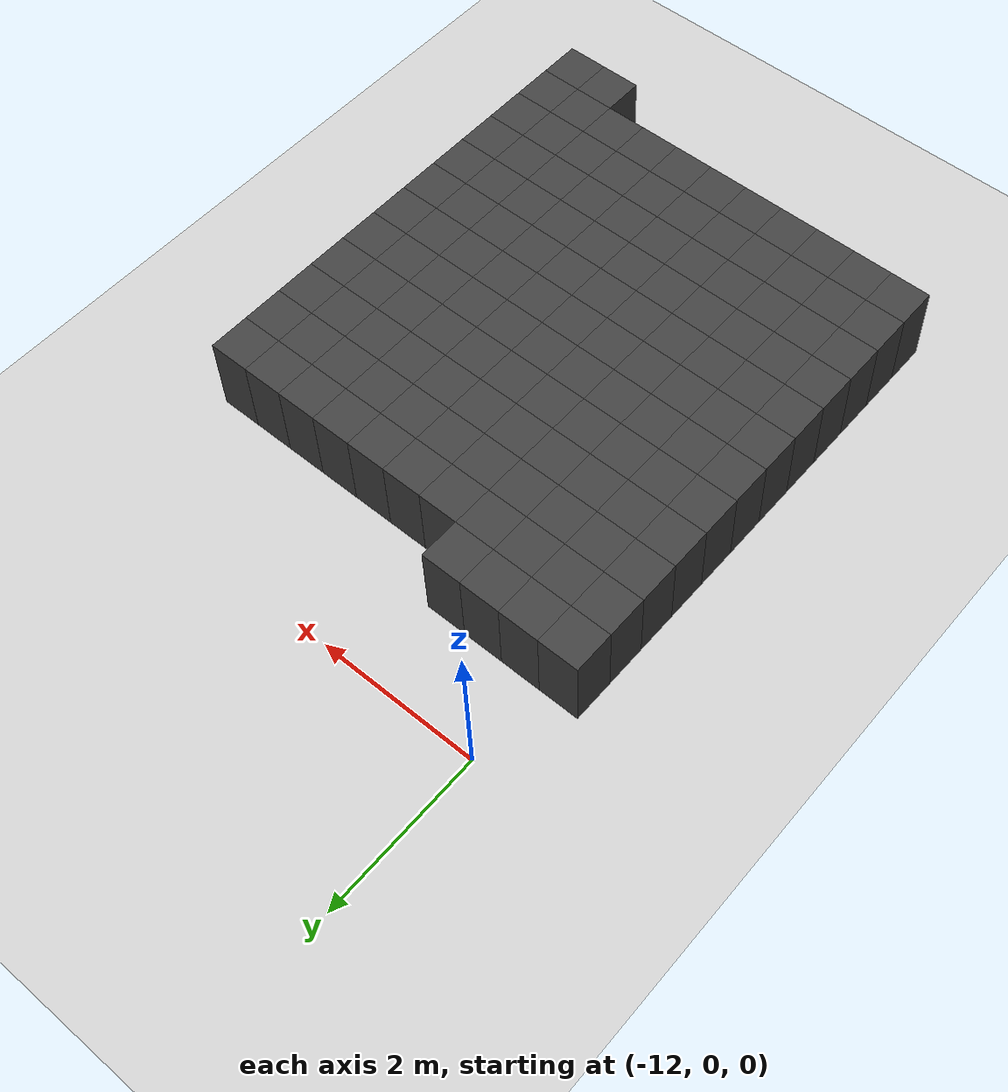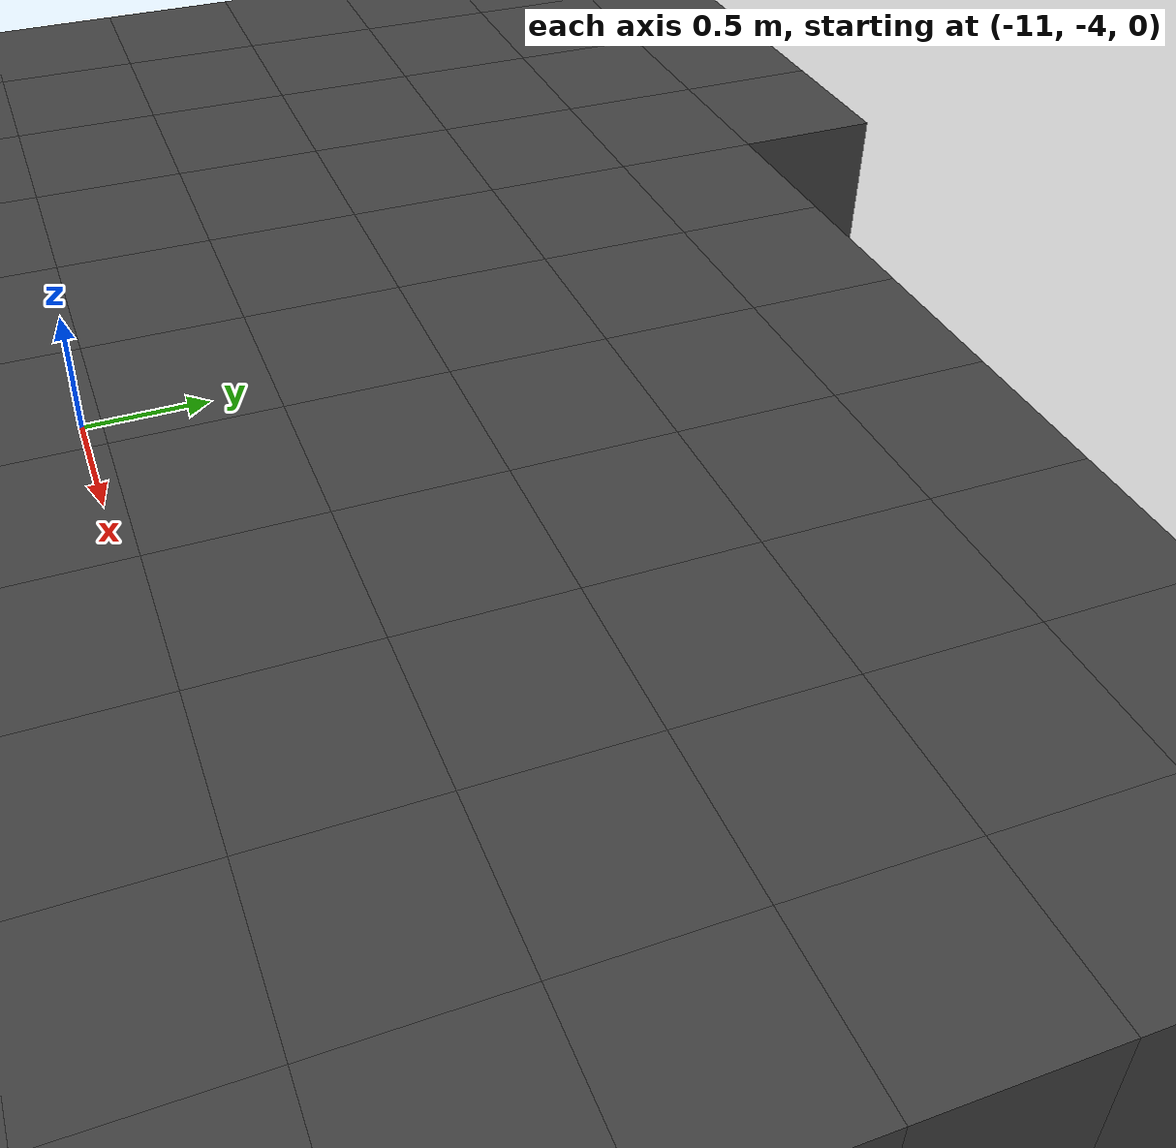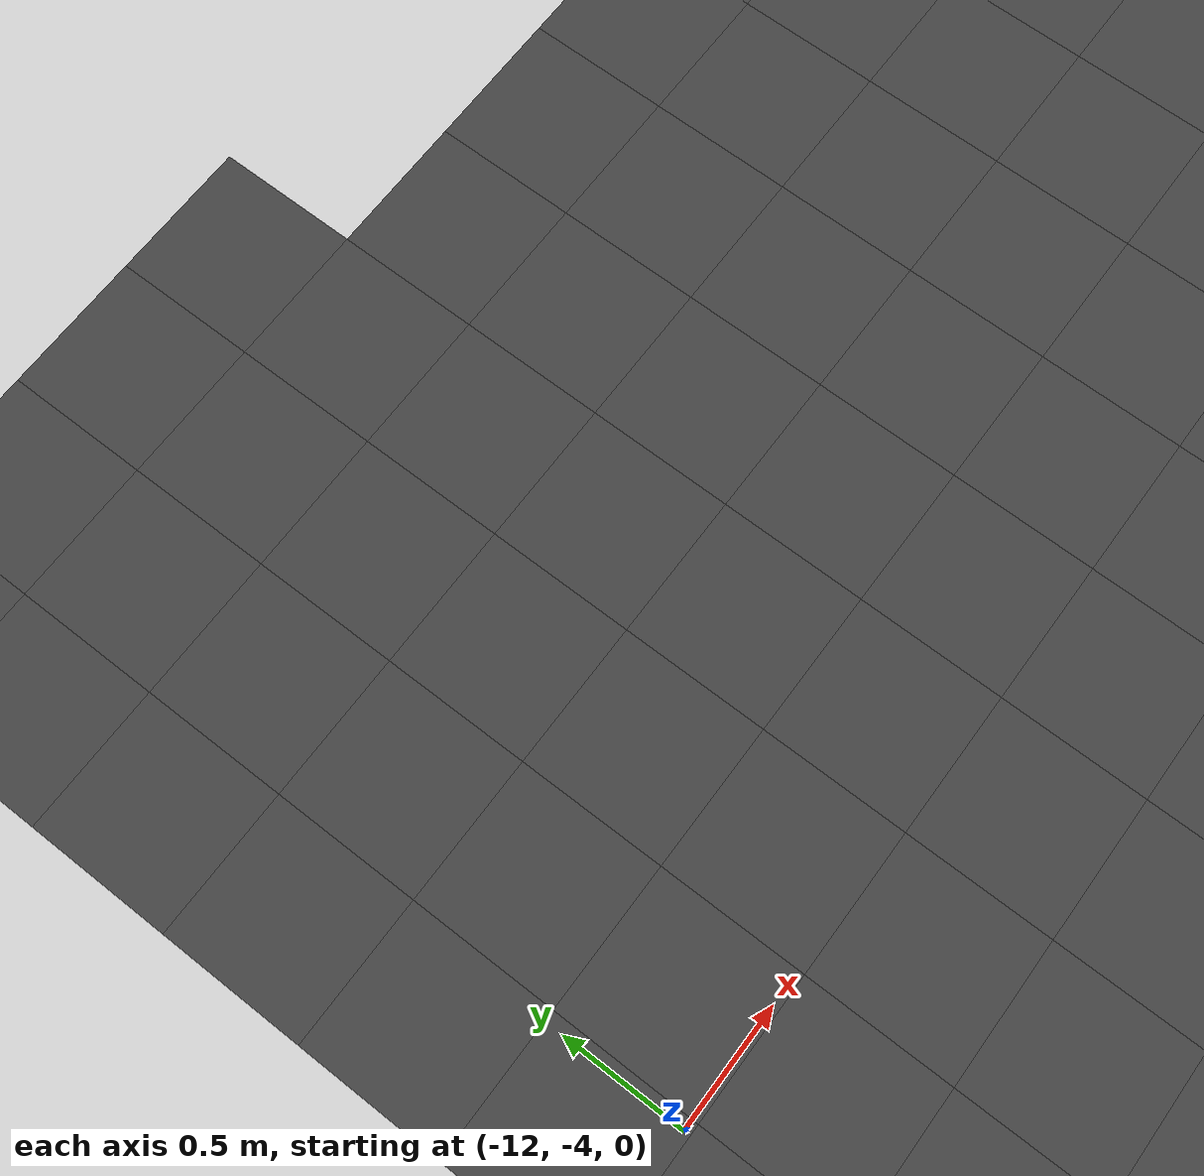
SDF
<sdf version="1.7">
 <world name="map_11672">
  <model name="ground_plane">
   <static>true</static>
   <link name="link">
    <collision name="collision">
     <geometry><plane><normal>0 0 1</normal><size>200 200</size></plane></geometry>
    </collision>
    <visual name="visual">
     <geometry><plane><normal>0 0 1</normal><size>200 200</size></plane></geometry>
     <material><ambient>0.8 0.8 0.8 1</ambient><diffuse>0.8 0.8 0.8 1</diffuse></material>
    </visual>
   </link>
  </model>
  <model name="maze_environment">
   <static>true</static>
   <link name="wall_1099">
    <pose>-12.250 -1.250 0.500 0 0 0</pose>
    <collision name="col"><geometry><box><size>0.5 0.5 1.0</size></box></geometry></collision>
    <visual name="vis">
     <geometry><box><size>0.5 0.5 1.0</size></box></geometry>
     <material><ambient>0.15 0.15 0.15 1</ambient><diffuse>0.25 0.25 0.25 1</diffuse></material>
    </visual>
   </link>
   <link name="wall_1100">
    <pose>-11.750 -1.250 0.500 0 0 0</pose>
    <collision name="col"><geometry><box><size>0.5 0.5 1.0</size></box></geometry></collision>
    <visual name="vis">
     <geometry><box><size>0.5 0.5 1.0</size></box></geometry>
     <material><ambient>0.15 0.15 0.15 1</ambient><diffuse>0.25 0.25 0.25 1</diffuse></material>
    </visual>
   </link>
   <link name="wall_1101">
    <pose>-11.250 -1.250 0.500 0 0 0</pose>
    <collision name="col"><geometry><box><size>0.5 0.5 1.0</size></box></geometry></collision>
    <visual name="vis">
     <geometry><box><size>0.5 0.5 1.0</size></box></geometry>
     <material><ambient>0.15 0.15 0.15 1</ambient><diffuse>0.25 0.25 0.25 1</diffuse></material>
    </visual>
   </link>
   <link name="wall_1102">
    <pose>-10.750 -1.250 0.500 0 0 0</pose>
    <collision name="col"><geometry><box><size>0.5 0.5 1.0</size></box></geometry></collision>
    <visual name="vis">
     <geometry><box><size>0.5 0.5 1.0</size></box></geometry>
     <material><ambient>0.15 0.15 0.15 1</ambient><diffuse>0.25 0.25 0.25 1</diffuse></material>
    </visual>
   </link>
   <link name="wall_1147">
    <pose>-12.250 -1.750 0.500 0 0 0</pose>
    <collision name="col"><geometry><box><size>0.5 0.5 1.0</size></box></geometry></collision>
    <visual name="vis">
     <geometry><box><size>0.5 0.5 1.0</size></box></geometry>
     <material><ambient>0.15 0.15 0.15 1</ambient><diffuse>0.25 0.25 0.25 1</diffuse></material>
    </visual>
   </link>
   <link name="wall_1148">
    <pose>-11.750 -1.750 0.500 0 0 0</pose>
    <collision name="col"><geometry><box><size>0.5 0.5 1.0</size></box></geometry></collision>
    <visual name="vis">
     <geometry><box><size>0.5 0.5 1.0</size></box></geometry>
     <material><ambient>0.15 0.15 0.15 1</ambient><diffuse>0.25 0.25 0.25 1</diffuse></material>
    </visual>
   </link>
   <link name="wall_1149">
    <pose>-11.250 -1.750 0.500 0 0 0</pose>
    <collision name="col"><geometry><box><size>0.5 0.5 1.0</size></box></geometry></collision>
    <visual name="vis">
     <geometry><box><size>0.5 0.5 1.0</size></box></geometry>
     <material><ambient>0.15 0.15 0.15 1</ambient><diffuse>0.25 0.25 0.25 1</diffuse></material>
    </visual>
   </link>
   <link name="wall_1150">
    <pose>-10.750 -1.750 0.500 0 0 0</pose>
    <collision name="col"><geometry><box><size>0.5 0.5 1.0</size></box></geometry></collision>
    <visual name="vis">
     <geometry><box><size>0.5 0.5 1.0</size></box></geometry>
     <material><ambient>0.15 0.15 0.15 1</ambient><diffuse>0.25 0.25 0.25 1</diffuse></material>
    </visual>
   </link>
   <link name="wall_1151">
    <pose>-10.250 -1.750 0.500 0 0 0</pose>
    <collision name="col"><geometry><box><size>0.5 0.5 1.0</size></box></geometry></collision>
    <visual name="vis">
     <geometry><box><size>0.5 0.5 1.0</size></box></geometry>
     <material><ambient>0.15 0.15 0.15 1</ambient><diffuse>0.25 0.25 0.25 1</diffuse></material>
    </visual>
   </link>
   <link name="wall_1152">
    <pose>-9.750 -1.750 0.500 0 0 0</pose>
    <collision name="col"><geometry><box><size>0.5 0.5 1.0</size></box></geometry></collision>
    <visual name="vis">
     <geometry><box><size>0.5 0.5 1.0</size></box></geometry>
     <material><ambient>0.15 0.15 0.15 1</ambient><diffuse>0.25 0.25 0.25 1</diffuse></material>
    </visual>
   </link>
   <link name="wall_1153">
    <pose>-9.250 -1.750 0.500 0 0 0</pose>
    <collision name="col"><geometry><box><size>0.5 0.5 1.0</size></box></geometry></collision>
    <visual name="vis">
     <geometry><box><size>0.5 0.5 1.0</size></box></geometry>
     <material><ambient>0.15 0.15 0.15 1</ambient><diffuse>0.25 0.25 0.25 1</diffuse></material>
    </visual>
   </link>
   <link name="wall_1154">
    <pose>-8.750 -1.750 0.500 0 0 0</pose>
    <collision name="col"><geometry><box><size>0.5 0.5 1.0</size></box></geometry></collision>
    <visual name="vis">
     <geometry><box><size>0.5 0.5 1.0</size></box></geometry>
     <material><ambient>0.15 0.15 0.15 1</ambient><diffuse>0.25 0.25 0.25 1</diffuse></material>
    </visual>
   </link>
   <link name="wall_1155">
    <pose>-8.250 -1.750 0.500 0 0 0</pose>
    <collision name="col"><geometry><box><size>0.5 0.5 1.0</size></box></geometry></collision>
    <visual name="vis">
     <geometry><box><size>0.5 0.5 1.0</size></box></geometry>
     <material><ambient>0.15 0.15 0.15 1</ambient><diffuse>0.25 0.25 0.25 1</diffuse></material>
    </visual>
   </link>
   <link name="wall_1156">
    <pose>-7.750 -1.750 0.500 0 0 0</pose>
    <collision name="col"><geometry><box><size>0.5 0.5 1.0</size></box></geometry></collision>
    <visual name="vis">
     <geometry><box><size>0.5 0.5 1.0</size></box></geometry>
     <material><ambient>0.15 0.15 0.15 1</ambient><diffuse>0.25 0.25 0.25 1</diffuse></material>
    </visual>
   </link>
   <link name="wall_1157">
    <pose>-7.250 -1.750 0.500 0 0 0</pose>
    <collision name="col"><geometry><box><size>0.5 0.5 1.0</size></box></geometry></collision>
    <visual name="vis">
     <geometry><box><size>0.5 0.5 1.0</size></box></geometry>
     <material><ambient>0.15 0.15 0.15 1</ambient><diffuse>0.25 0.25 0.25 1</diffuse></material>
    </visual>
   </link>
   <link name="wall_1195">
    <pose>-12.250 -2.250 0.500 0 0 0</pose>
    <collision name="col"><geometry><box><size>0.5 0.5 1.0</size></box></geometry></collision>
    <visual name="vis">
     <geometry><box><size>0.5 0.5 1.0</size></box></geometry>
     <material><ambient>0.15 0.15 0.15 1</ambient><diffuse>0.25 0.25 0.25 1</diffuse></material>
    </visual>
   </link>
   <link name="wall_1196">
    <pose>-11.750 -2.250 0.500 0 0 0</pose>
    <collision name="col"><geometry><box><size>0.5 0.5 1.0</size></box></geometry></collision>
    <visual name="vis">
     <geometry><box><size>0.5 0.5 1.0</size></box></geometry>
     <material><ambient>0.15 0.15 0.15 1</ambient><diffuse>0.25 0.25 0.25 1</diffuse></material>
    </visual>
   </link>
   <link name="wall_1197">
    <pose>-11.250 -2.250 0.500 0 0 0</pose>
    <collision name="col"><geometry><box><size>0.5 0.5 1.0</size></box></geometry></collision>
    <visual name="vis">
     <geometry><box><size>0.5 0.5 1.0</size></box></geometry>
     <material><ambient>0.15 0.15 0.15 1</ambient><diffuse>0.25 0.25 0.25 1</diffuse></material>
    </visual>
   </link>
   <link name="wall_1198">
    <pose>-10.750 -2.250 0.500 0 0 0</pose>
    <collision name="col"><geometry><box><size>0.5 0.5 1.0</size></box></geometry></collision>
    <visual name="vis">
     <geometry><box><size>0.5 0.5 1.0</size></box></geometry>
     <material><ambient>0.15 0.15 0.15 1</ambient><diffuse>0.25 0.25 0.25 1</diffuse></material>
    </visual>
   </link>
   <link name="wall_1199">
    <pose>-10.250 -2.250 0.500 0 0 0</pose>
    <collision name="col"><geometry><box><size>0.5 0.5 1.0</size></box></geometry></collision>
    <visual name="vis">
     <geometry><box><size>0.5 0.5 1.0</size></box></geometry>
     <material><ambient>0.15 0.15 0.15 1</ambient><diffuse>0.25 0.25 0.25 1</diffuse></material>
    </visual>
   </link>
   <link name="wall_1200">
    <pose>-9.750 -2.250 0.500 0 0 0</pose>
    <collision name="col"><geometry><box><size>0.5 0.5 1.0</size></box></geometry></collision>
    <visual name="vis">
     <geometry><box><size>0.5 0.5 1.0</size></box></geometry>
     <material><ambient>0.15 0.15 0.15 1</ambient><diffuse>0.25 0.25 0.25 1</diffuse></material>
    </visual>
   </link>
   <link name="wall_1201">
    <pose>-9.250 -2.250 0.500 0 0 0</pose>
    <collision name="col"><geometry><box><size>0.5 0.5 1.0</size></box></geometry></collision>
    <visual name="vis">
     <geometry><box><size>0.5 0.5 1.0</size></box></geometry>
     <material><ambient>0.15 0.15 0.15 1</ambient><diffuse>0.25 0.25 0.25 1</diffuse></material>
    </visual>
   </link>
   <link name="wall_1202">
    <pose>-8.750 -2.250 0.500 0 0 0</pose>
    <collision name="col"><geometry><box><size>0.5 0.5 1.0</size></box></geometry></collision>
    <visual name="vis">
     <geometry><box><size>0.5 0.5 1.0</size></box></geometry>
     <material><ambient>0.15 0.15 0.15 1</ambient><diffuse>0.25 0.25 0.25 1</diffuse></material>
    </visual>
   </link>
   <link name="wall_1203">
    <pose>-8.250 -2.250 0.500 0 0 0</pose>
    <collision name="col"><geometry><box><size>0.5 0.5 1.0</size></box></geometry></collision>
    <visual name="vis">
     <geometry><box><size>0.5 0.5 1.0</size></box></geometry>
     <material><ambient>0.15 0.15 0.15 1</ambient><diffuse>0.25 0.25 0.25 1</diffuse></material>
    </visual>
   </link>
   <link name="wall_1204">
    <pose>-7.750 -2.250 0.500 0 0 0</pose>
    <collision name="col"><geometry><box><size>0.5 0.5 1.0</size></box></geometry></collision>
    <visual name="vis">
     <geometry><box><size>0.5 0.5 1.0</size></box></geometry>
     <material><ambient>0.15 0.15 0.15 1</ambient><diffuse>0.25 0.25 0.25 1</diffuse></material>
    </visual>
   </link>
   <link name="wall_1205">
    <pose>-7.250 -2.250 0.500 0 0 0</pose>
    <collision name="col"><geometry><box><size>0.5 0.5 1.0</size></box></geometry></collision>
    <visual name="vis">
     <geometry><box><size>0.5 0.5 1.0</size></box></geometry>
     <material><ambient>0.15 0.15 0.15 1</ambient><diffuse>0.25 0.25 0.25 1</diffuse></material>
    </visual>
   </link>
   <link name="wall_1240">
    <pose>-12.250 -2.750 0.500 0 0 0</pose>
    <collision name="col"><geometry><box><size>0.5 0.5 1.0</size></box></geometry></collision>
    <visual name="vis">
     <geometry><box><size>0.5 0.5 1.0</size></box></geometry>
     <material><ambient>0.15 0.15 0.15 1</ambient><diffuse>0.25 0.25 0.25 1</diffuse></material>
    </visual>
   </link>
   <link name="wall_1241">
    <pose>-11.750 -2.750 0.500 0 0 0</pose>
    <collision name="col"><geometry><box><size>0.5 0.5 1.0</size></box></geometry></collision>
    <visual name="vis">
     <geometry><box><size>0.5 0.5 1.0</size></box></geometry>
     <material><ambient>0.15 0.15 0.15 1</ambient><diffuse>0.25 0.25 0.25 1</diffuse></material>
    </visual>
   </link>
   <link name="wall_1242">
    <pose>-11.250 -2.750 0.500 0 0 0</pose>
    <collision name="col"><geometry><box><size>0.5 0.5 1.0</size></box></geometry></collision>
    <visual name="vis">
     <geometry><box><size>0.5 0.5 1.0</size></box></geometry>
     <material><ambient>0.15 0.15 0.15 1</ambient><diffuse>0.25 0.25 0.25 1</diffuse></material>
    </visual>
   </link>
   <link name="wall_1243">
    <pose>-10.750 -2.750 0.500 0 0 0</pose>
    <collision name="col"><geometry><box><size>0.5 0.5 1.0</size></box></geometry></collision>
    <visual name="vis">
     <geometry><box><size>0.5 0.5 1.0</size></box></geometry>
     <material><ambient>0.15 0.15 0.15 1</ambient><diffuse>0.25 0.25 0.25 1</diffuse></material>
    </visual>
   </link>
   <link name="wall_1244">
    <pose>-10.250 -2.750 0.500 0 0 0</pose>
    <collision name="col"><geometry><box><size>0.5 0.5 1.0</size></box></geometry></collision>
    <visual name="vis">
     <geometry><box><size>0.5 0.5 1.0</size></box></geometry>
     <material><ambient>0.15 0.15 0.15 1</ambient><diffuse>0.25 0.25 0.25 1</diffuse></material>
    </visual>
   </link>
   <link name="wall_1245">
    <pose>-9.750 -2.750 0.500 0 0 0</pose>
    <collision name="col"><geometry><box><size>0.5 0.5 1.0</size></box></geometry></collision>
    <visual name="vis">
     <geometry><box><size>0.5 0.5 1.0</size></box></geometry>
     <material><ambient>0.15 0.15 0.15 1</ambient><diffuse>0.25 0.25 0.25 1</diffuse></material>
    </visual>
   </link>
   <link name="wall_1246">
    <pose>-9.250 -2.750 0.500 0 0 0</pose>
    <collision name="col"><geometry><box><size>0.5 0.5 1.0</size></box></geometry></collision>
    <visual name="vis">
     <geometry><box><size>0.5 0.5 1.0</size></box></geometry>
     <material><ambient>0.15 0.15 0.15 1</ambient><diffuse>0.25 0.25 0.25 1</diffuse></material>
    </visual>
   </link>
   <link name="wall_1247">
    <pose>-8.750 -2.750 0.500 0 0 0</pose>
    <collision name="col"><geometry><box><size>0.5 0.5 1.0</size></box></geometry></collision>
    <visual name="vis">
     <geometry><box><size>0.5 0.5 1.0</size></box></geometry>
     <material><ambient>0.15 0.15 0.15 1</ambient><diffuse>0.25 0.25 0.25 1</diffuse></material>
    </visual>
   </link>
   <link name="wall_1248">
    <pose>-8.250 -2.750 0.500 0 0 0</pose>
    <collision name="col"><geometry><box><size>0.5 0.5 1.0</size></box></geometry></collision>
    <visual name="vis">
     <geometry><box><size>0.5 0.5 1.0</size></box></geometry>
     <material><ambient>0.15 0.15 0.15 1</ambient><diffuse>0.25 0.25 0.25 1</diffuse></material>
    </visual>
   </link>
   <link name="wall_1249">
    <pose>-7.750 -2.750 0.500 0 0 0</pose>
    <collision name="col"><geometry><box><size>0.5 0.5 1.0</size></box></geometry></collision>
    <visual name="vis">
     <geometry><box><size>0.5 0.5 1.0</size></box></geometry>
     <material><ambient>0.15 0.15 0.15 1</ambient><diffuse>0.25 0.25 0.25 1</diffuse></material>
    </visual>
   </link>
   <link name="wall_1250">
    <pose>-7.250 -2.750 0.500 0 0 0</pose>
    <collision name="col"><geometry><box><size>0.5 0.5 1.0</size></box></geometry></collision>
    <visual name="vis">
     <geometry><box><size>0.5 0.5 1.0</size></box></geometry>
     <material><ambient>0.15 0.15 0.15 1</ambient><diffuse>0.25 0.25 0.25 1</diffuse></material>
    </visual>
   </link>
   <link name="wall_1279">
    <pose>-12.250 -3.250 0.500 0 0 0</pose>
    <collision name="col"><geometry><box><size>0.5 0.5 1.0</size></box></geometry></collision>
    <visual name="vis">
     <geometry><box><size>0.5 0.5 1.0</size></box></geometry>
     <material><ambient>0.15 0.15 0.15 1</ambient><diffuse>0.25 0.25 0.25 1</diffuse></material>
    </visual>
   </link>
   <link name="wall_1280">
    <pose>-11.750 -3.250 0.500 0 0 0</pose>
    <collision name="col"><geometry><box><size>0.5 0.5 1.0</size></box></geometry></collision>
    <visual name="vis">
     <geometry><box><size>0.5 0.5 1.0</size></box></geometry>
     <material><ambient>0.15 0.15 0.15 1</ambient><diffuse>0.25 0.25 0.25 1</diffuse></material>
    </visual>
   </link>
   <link name="wall_1281">
    <pose>-11.250 -3.250 0.500 0 0 0</pose>
    <collision name="col"><geometry><box><size>0.5 0.5 1.0</size></box></geometry></collision>
    <visual name="vis">
     <geometry><box><size>0.5 0.5 1.0</size></box></geometry>
     <material><ambient>0.15 0.15 0.15 1</ambient><diffuse>0.25 0.25 0.25 1</diffuse></material>
    </visual>
   </link>
   <link name="wall_1282">
    <pose>-10.750 -3.250 0.500 0 0 0</pose>
    <collision name="col"><geometry><box><size>0.5 0.5 1.0</size></box></geometry></collision>
    <visual name="vis">
     <geometry><box><size>0.5 0.5 1.0</size></box></geometry>
     <material><ambient>0.15 0.15 0.15 1</ambient><diffuse>0.25 0.25 0.25 1</diffuse></material>
    </visual>
   </link>
   <link name="wall_1283">
    <pose>-10.250 -3.250 0.500 0 0 0</pose>
    <collision name="col"><geometry><box><size>0.5 0.5 1.0</size></box></geometry></collision>
    <visual name="vis">
     <geometry><box><size>0.5 0.5 1.0</size></box></geometry>
     <material><ambient>0.15 0.15 0.15 1</ambient><diffuse>0.25 0.25 0.25 1</diffuse></material>
    </visual>
   </link>
   <link name="wall_1284">
    <pose>-9.750 -3.250 0.500 0 0 0</pose>
    <collision name="col"><geometry><box><size>0.5 0.5 1.0</size></box></geometry></collision>
    <visual name="vis">
     <geometry><box><size>0.5 0.5 1.0</size></box></geometry>
     <material><ambient>0.15 0.15 0.15 1</ambient><diffuse>0.25 0.25 0.25 1</diffuse></material>
    </visual>
   </link>
   <link name="wall_1285">
    <pose>-9.250 -3.250 0.500 0 0 0</pose>
    <collision name="col"><geometry><box><size>0.5 0.5 1.0</size></box></geometry></collision>
    <visual name="vis">
     <geometry><box><size>0.5 0.5 1.0</size></box></geometry>
     <material><ambient>0.15 0.15 0.15 1</ambient><diffuse>0.25 0.25 0.25 1</diffuse></material>
    </visual>
   </link>
   <link name="wall_1286">
    <pose>-8.750 -3.250 0.500 0 0 0</pose>
    <collision name="col"><geometry><box><size>0.5 0.5 1.0</size></box></geometry></collision>
    <visual name="vis">
     <geometry><box><size>0.5 0.5 1.0</size></box></geometry>
     <material><ambient>0.15 0.15 0.15 1</ambient><diffuse>0.25 0.25 0.25 1</diffuse></material>
    </visual>
   </link>
   <link name="wall_1287">
    <pose>-8.250 -3.250 0.500 0 0 0</pose>
    <collision name="col"><geometry><box><size>0.5 0.5 1.0</size></box></geometry></collision>
    <visual name="vis">
     <geometry><box><size>0.5 0.5 1.0</size></box></geometry>
     <material><ambient>0.15 0.15 0.15 1</ambient><diffuse>0.25 0.25 0.25 1</diffuse></material>
    </visual>
   </link>
   <link name="wall_1288">
    <pose>-7.750 -3.250 0.500 0 0 0</pose>
    <collision name="col"><geometry><box><size>0.5 0.5 1.0</size></box></geometry></collision>
    <visual name="vis">
     <geometry><box><size>0.5 0.5 1.0</size></box></geometry>
     <material><ambient>0.15 0.15 0.15 1</ambient><diffuse>0.25 0.25 0.25 1</diffuse></material>
    </visual>
   </link>
   <link name="wall_1289">
    <pose>-7.250 -3.250 0.500 0 0 0</pose>
    <collision name="col"><geometry><box><size>0.5 0.5 1.0</size></box></geometry></collision>
    <visual name="vis">
     <geometry><box><size>0.5 0.5 1.0</size></box></geometry>
     <material><ambient>0.15 0.15 0.15 1</ambient><diffuse>0.25 0.25 0.25 1</diffuse></material>
    </visual>
   </link>
   <link name="wall_1318">
    <pose>-12.250 -3.750 0.500 0 0 0</pose>
    <collision name="col"><geometry><box><size>0.5 0.5 1.0</size></box></geometry></collision>
    <visual name="vis">
     <geometry><box><size>0.5 0.5 1.0</size></box></geometry>
     <material><ambient>0.15 0.15 0.15 1</ambient><diffuse>0.25 0.25 0.25 1</diffuse></material>
    </visual>
   </link>
   <link name="wall_1319">
    <pose>-11.750 -3.750 0.500 0 0 0</pose>
    <collision name="col"><geometry><box><size>0.5 0.5 1.0</size></box></geometry></collision>
    <visual name="vis">
     <geometry><box><size>0.5 0.5 1.0</size></box></geometry>
     <material><ambient>0.15 0.15 0.15 1</ambient><diffuse>0.25 0.25 0.25 1</diffuse></material>
    </visual>
   </link>
   <link name="wall_1320">
    <pose>-11.250 -3.750 0.500 0 0 0</pose>
    <collision name="col"><geometry><box><size>0.5 0.5 1.0</size></box></geometry></collision>
    <visual name="vis">
     <geometry><box><size>0.5 0.5 1.0</size></box></geometry>
     <material><ambient>0.15 0.15 0.15 1</ambient><diffuse>0.25 0.25 0.25 1</diffuse></material>
    </visual>
   </link>
   <link name="wall_1321">
    <pose>-10.750 -3.750 0.500 0 0 0</pose>
    <collision name="col"><geometry><box><size>0.5 0.5 1.0</size></box></geometry></collision>
    <visual name="vis">
     <geometry><box><size>0.5 0.5 1.0</size></box></geometry>
     <material><ambient>0.15 0.15 0.15 1</ambient><diffuse>0.25 0.25 0.25 1</diffuse></material>
    </visual>
   </link>
   <link name="wall_1322">
    <pose>-10.250 -3.750 0.500 0 0 0</pose>
    <collision name="col"><geometry><box><size>0.5 0.5 1.0</size></box></geometry></collision>
    <visual name="vis">
     <geometry><box><size>0.5 0.5 1.0</size></box></geometry>
     <material><ambient>0.15 0.15 0.15 1</ambient><diffuse>0.25 0.25 0.25 1</diffuse></material>
    </visual>
   </link>
   <link name="wall_1323">
    <pose>-9.750 -3.750 0.500 0 0 0</pose>
    <collision name="col"><geometry><box><size>0.5 0.5 1.0</size></box></geometry></collision>
    <visual name="vis">
     <geometry><box><size>0.5 0.5 1.0</size></box></geometry>
     <material><ambient>0.15 0.15 0.15 1</ambient><diffuse>0.25 0.25 0.25 1</diffuse></material>
    </visual>
   </link>
   <link name="wall_1324">
    <pose>-9.250 -3.750 0.500 0 0 0</pose>
    <collision name="col"><geometry><box><size>0.5 0.5 1.0</size></box></geometry></collision>
    <visual name="vis">
     <geometry><box><size>0.5 0.5 1.0</size></box></geometry>
     <material><ambient>0.15 0.15 0.15 1</ambient><diffuse>0.25 0.25 0.25 1</diffuse></material>
    </visual>
   </link>
   <link name="wall_1325">
    <pose>-8.750 -3.750 0.500 0 0 0</pose>
    <collision name="col"><geometry><box><size>0.5 0.5 1.0</size></box></geometry></collision>
    <visual name="vis">
     <geometry><box><size>0.5 0.5 1.0</size></box></geometry>
     <material><ambient>0.15 0.15 0.15 1</ambient><diffuse>0.25 0.25 0.25 1</diffuse></material>
    </visual>
   </link>
   <link name="wall_1326">
    <pose>-8.250 -3.750 0.500 0 0 0</pose>
    <collision name="col"><geometry><box><size>0.5 0.5 1.0</size></box></geometry></collision>
    <visual name="vis">
     <geometry><box><size>0.5 0.5 1.0</size></box></geometry>
     <material><ambient>0.15 0.15 0.15 1</ambient><diffuse>0.25 0.25 0.25 1</diffuse></material>
    </visual>
   </link>
   <link name="wall_1327">
    <pose>-7.750 -3.750 0.500 0 0 0</pose>
    <collision name="col"><geometry><box><size>0.5 0.5 1.0</size></box></geometry></collision>
    <visual name="vis">
     <geometry><box><size>0.5 0.5 1.0</size></box></geometry>
     <material><ambient>0.15 0.15 0.15 1</ambient><diffuse>0.25 0.25 0.25 1</diffuse></material>
    </visual>
   </link>
   <link name="wall_1328">
    <pose>-7.250 -3.750 0.500 0 0 0</pose>
    <collision name="col"><geometry><box><size>0.5 0.5 1.0</size></box></geometry></collision>
    <visual name="vis">
     <geometry><box><size>0.5 0.5 1.0</size></box></geometry>
     <material><ambient>0.15 0.15 0.15 1</ambient><diffuse>0.25 0.25 0.25 1</diffuse></material>
    </visual>
   </link>
   <link name="wall_1357">
    <pose>-12.250 -4.250 0.500 0 0 0</pose>
    <collision name="col"><geometry><box><size>0.5 0.5 1.0</size></box></geometry></collision>
    <visual name="vis">
     <geometry><box><size>0.5 0.5 1.0</size></box></geometry>
     <material><ambient>0.15 0.15 0.15 1</ambient><diffuse>0.25 0.25 0.25 1</diffuse></material>
    </visual>
   </link>
   <link name="wall_1358">
    <pose>-11.750 -4.250 0.500 0 0 0</pose>
    <collision name="col"><geometry><box><size>0.5 0.5 1.0</size></box></geometry></collision>
    <visual name="vis">
     <geometry><box><size>0.5 0.5 1.0</size></box></geometry>
     <material><ambient>0.15 0.15 0.15 1</ambient><diffuse>0.25 0.25 0.25 1</diffuse></material>
    </visual>
   </link>
   <link name="wall_1359">
    <pose>-11.250 -4.250 0.500 0 0 0</pose>
    <collision name="col"><geometry><box><size>0.5 0.5 1.0</size></box></geometry></collision>
    <visual name="vis">
     <geometry><box><size>0.5 0.5 1.0</size></box></geometry>
     <material><ambient>0.15 0.15 0.15 1</ambient><diffuse>0.25 0.25 0.25 1</diffuse></material>
    </visual>
   </link>
   <link name="wall_1360">
    <pose>-10.750 -4.250 0.500 0 0 0</pose>
    <collision name="col"><geometry><box><size>0.5 0.5 1.0</size></box></geometry></collision>
    <visual name="vis">
     <geometry><box><size>0.5 0.5 1.0</size></box></geometry>
     <material><ambient>0.15 0.15 0.15 1</ambient><diffuse>0.25 0.25 0.25 1</diffuse></material>
    </visual>
   </link>
   <link name="wall_1361">
    <pose>-10.250 -4.250 0.500 0 0 0</pose>
    <collision name="col"><geometry><box><size>0.5 0.5 1.0</size></box></geometry></collision>
    <visual name="vis">
     <geometry><box><size>0.5 0.5 1.0</size></box></geometry>
     <material><ambient>0.15 0.15 0.15 1</ambient><diffuse>0.25 0.25 0.25 1</diffuse></material>
    </visual>
   </link>
   <link name="wall_1362">
    <pose>-9.750 -4.250 0.500 0 0 0</pose>
    <collision name="col"><geometry><box><size>0.5 0.5 1.0</size></box></geometry></collision>
    <visual name="vis">
     <geometry><box><size>0.5 0.5 1.0</size></box></geometry>
     <material><ambient>0.15 0.15 0.15 1</ambient><diffuse>0.25 0.25 0.25 1</diffuse></material>
    </visual>
   </link>
   <link name="wall_1363">
    <pose>-9.250 -4.250 0.500 0 0 0</pose>
    <collision name="col"><geometry><box><size>0.5 0.5 1.0</size></box></geometry></collision>
    <visual name="vis">
     <geometry><box><size>0.5 0.5 1.0</size></box></geometry>
     <material><ambient>0.15 0.15 0.15 1</ambient><diffuse>0.25 0.25 0.25 1</diffuse></material>
    </visual>
   </link>
   <link name="wall_1364">
    <pose>-8.750 -4.250 0.500 0 0 0</pose>
    <collision name="col"><geometry><box><size>0.5 0.5 1.0</size></box></geometry></collision>
    <visual name="vis">
     <geometry><box><size>0.5 0.5 1.0</size></box></geometry>
     <material><ambient>0.15 0.15 0.15 1</ambient><diffuse>0.25 0.25 0.25 1</diffuse></material>
    </visual>
   </link>
   <link name="wall_1365">
    <pose>-8.250 -4.250 0.500 0 0 0</pose>
    <collision name="col"><geometry><box><size>0.5 0.5 1.0</size></box></geometry></collision>
    <visual name="vis">
     <geometry><box><size>0.5 0.5 1.0</size></box></geometry>
     <material><ambient>0.15 0.15 0.15 1</ambient><diffuse>0.25 0.25 0.25 1</diffuse></material>
    </visual>
   </link>
   <link name="wall_1366">
    <pose>-7.750 -4.250 0.500 0 0 0</pose>
    <collision name="col"><geometry><box><size>0.5 0.5 1.0</size></box></geometry></collision>
    <visual name="vis">
     <geometry><box><size>0.5 0.5 1.0</size></box></geometry>
     <material><ambient>0.15 0.15 0.15 1</ambient><diffuse>0.25 0.25 0.25 1</diffuse></material>
    </visual>
   </link>
   <link name="wall_1367">
    <pose>-7.250 -4.250 0.500 0 0 0</pose>
    <collision name="col"><geometry><box><size>0.5 0.5 1.0</size></box></geometry></collision>
    <visual name="vis">
     <geometry><box><size>0.5 0.5 1.0</size></box></geometry>
     <material><ambient>0.15 0.15 0.15 1</ambient><diffuse>0.25 0.25 0.25 1</diffuse></material>
    </visual>
   </link>
   <link name="wall_1395">
    <pose>-12.250 -4.750 0.500 0 0 0</pose>
    <collision name="col"><geometry><box><size>0.5 0.5 1.0</size></box></geometry></collision>
    <visual name="vis">
     <geometry><box><size>0.5 0.5 1.0</size></box></geometry>
     <material><ambient>0.15 0.15 0.15 1</ambient><diffuse>0.25 0.25 0.25 1</diffuse></material>
    </visual>
   </link>
   <link name="wall_1396">
    <pose>-11.750 -4.750 0.500 0 0 0</pose>
    <collision name="col"><geometry><box><size>0.5 0.5 1.0</size></box></geometry></collision>
    <visual name="vis">
     <geometry><box><size>0.5 0.5 1.0</size></box></geometry>
     <material><ambient>0.15 0.15 0.15 1</ambient><diffuse>0.25 0.25 0.25 1</diffuse></material>
    </visual>
   </link>
   <link name="wall_1397">
    <pose>-11.250 -4.750 0.500 0 0 0</pose>
    <collision name="col"><geometry><box><size>0.5 0.5 1.0</size></box></geometry></collision>
    <visual name="vis">
     <geometry><box><size>0.5 0.5 1.0</size></box></geometry>
     <material><ambient>0.15 0.15 0.15 1</ambient><diffuse>0.25 0.25 0.25 1</diffuse></material>
    </visual>
   </link>
   <link name="wall_1398">
    <pose>-10.750 -4.750 0.500 0 0 0</pose>
    <collision name="col"><geometry><box><size>0.5 0.5 1.0</size></box></geometry></collision>
    <visual name="vis">
     <geometry><box><size>0.5 0.5 1.0</size></box></geometry>
     <material><ambient>0.15 0.15 0.15 1</ambient><diffuse>0.25 0.25 0.25 1</diffuse></material>
    </visual>
   </link>
   <link name="wall_1399">
    <pose>-10.250 -4.750 0.500 0 0 0</pose>
    <collision name="col"><geometry><box><size>0.5 0.5 1.0</size></box></geometry></collision>
    <visual name="vis">
     <geometry><box><size>0.5 0.5 1.0</size></box></geometry>
     <material><ambient>0.15 0.15 0.15 1</ambient><diffuse>0.25 0.25 0.25 1</diffuse></material>
    </visual>
   </link>
   <link name="wall_1400">
    <pose>-9.750 -4.750 0.500 0 0 0</pose>
    <collision name="col"><geometry><box><size>0.5 0.5 1.0</size></box></geometry></collision>
    <visual name="vis">
     <geometry><box><size>0.5 0.5 1.0</size></box></geometry>
     <material><ambient>0.15 0.15 0.15 1</ambient><diffuse>0.25 0.25 0.25 1</diffuse></material>
    </visual>
   </link>
   <link name="wall_1401">
    <pose>-9.250 -4.750 0.500 0 0 0</pose>
    <collision name="col"><geometry><box><size>0.5 0.5 1.0</size></box></geometry></collision>
    <visual name="vis">
     <geometry><box><size>0.5 0.5 1.0</size></box></geometry>
     <material><ambient>0.15 0.15 0.15 1</ambient><diffuse>0.25 0.25 0.25 1</diffuse></material>
    </visual>
   </link>
   <link name="wall_1402">
    <pose>-8.750 -4.750 0.500 0 0 0</pose>
    <collision name="col"><geometry><box><size>0.5 0.5 1.0</size></box></geometry></collision>
    <visual name="vis">
     <geometry><box><size>0.5 0.5 1.0</size></box></geometry>
     <material><ambient>0.15 0.15 0.15 1</ambient><diffuse>0.25 0.25 0.25 1</diffuse></material>
    </visual>
   </link>
   <link name="wall_1403">
    <pose>-8.250 -4.750 0.500 0 0 0</pose>
    <collision name="col"><geometry><box><size>0.5 0.5 1.0</size></box></geometry></collision>
    <visual name="vis">
     <geometry><box><size>0.5 0.5 1.0</size></box></geometry>
     <material><ambient>0.15 0.15 0.15 1</ambient><diffuse>0.25 0.25 0.25 1</diffuse></material>
    </visual>
   </link>
   <link name="wall_1404">
    <pose>-7.750 -4.750 0.500 0 0 0</pose>
    <collision name="col"><geometry><box><size>0.5 0.5 1.0</size></box></geometry></collision>
    <visual name="vis">
     <geometry><box><size>0.5 0.5 1.0</size></box></geometry>
     <material><ambient>0.15 0.15 0.15 1</ambient><diffuse>0.25 0.25 0.25 1</diffuse></material>
    </visual>
   </link>
   <link name="wall_1405">
    <pose>-7.250 -4.750 0.500 0 0 0</pose>
    <collision name="col"><geometry><box><size>0.5 0.5 1.0</size></box></geometry></collision>
    <visual name="vis">
     <geometry><box><size>0.5 0.5 1.0</size></box></geometry>
     <material><ambient>0.15 0.15 0.15 1</ambient><diffuse>0.25 0.25 0.25 1</diffuse></material>
    </visual>
   </link>
   <link name="wall_1438">
    <pose>-12.250 -5.250 0.500 0 0 0</pose>
    <collision name="col"><geometry><box><size>0.5 0.5 1.0</size></box></geometry></collision>
    <visual name="vis">
     <geometry><box><size>0.5 0.5 1.0</size></box></geometry>
     <material><ambient>0.15 0.15 0.15 1</ambient><diffuse>0.25 0.25 0.25 1</diffuse></material>
    </visual>
   </link>
   <link name="wall_1439">
    <pose>-11.750 -5.250 0.500 0 0 0</pose>
    <collision name="col"><geometry><box><size>0.5 0.5 1.0</size></box></geometry></collision>
    <visual name="vis">
     <geometry><box><size>0.5 0.5 1.0</size></box></geometry>
     <material><ambient>0.15 0.15 0.15 1</ambient><diffuse>0.25 0.25 0.25 1</diffuse></material>
    </visual>
   </link>
   <link name="wall_1440">
    <pose>-11.250 -5.250 0.500 0 0 0</pose>
    <collision name="col"><geometry><box><size>0.5 0.5 1.0</size></box></geometry></collision>
    <visual name="vis">
     <geometry><box><size>0.5 0.5 1.0</size></box></geometry>
     <material><ambient>0.15 0.15 0.15 1</ambient><diffuse>0.25 0.25 0.25 1</diffuse></material>
    </visual>
   </link>
   <link name="wall_1441">
    <pose>-10.750 -5.250 0.500 0 0 0</pose>
    <collision name="col"><geometry><box><size>0.5 0.5 1.0</size></box></geometry></collision>
    <visual name="vis">
     <geometry><box><size>0.5 0.5 1.0</size></box></geometry>
     <material><ambient>0.15 0.15 0.15 1</ambient><diffuse>0.25 0.25 0.25 1</diffuse></material>
    </visual>
   </link>
   <link name="wall_1442">
    <pose>-10.250 -5.250 0.500 0 0 0</pose>
    <collision name="col"><geometry><box><size>0.5 0.5 1.0</size></box></geometry></collision>
    <visual name="vis">
     <geometry><box><size>0.5 0.5 1.0</size></box></geometry>
     <material><ambient>0.15 0.15 0.15 1</ambient><diffuse>0.25 0.25 0.25 1</diffuse></material>
    </visual>
   </link>
   <link name="wall_1443">
    <pose>-9.750 -5.250 0.500 0 0 0</pose>
    <collision name="col"><geometry><box><size>0.5 0.5 1.0</size></box></geometry></collision>
    <visual name="vis">
     <geometry><box><size>0.5 0.5 1.0</size></box></geometry>
     <material><ambient>0.15 0.15 0.15 1</ambient><diffuse>0.25 0.25 0.25 1</diffuse></material>
    </visual>
   </link>
   <link name="wall_1444">
    <pose>-9.250 -5.250 0.500 0 0 0</pose>
    <collision name="col"><geometry><box><size>0.5 0.5 1.0</size></box></geometry></collision>
    <visual name="vis">
     <geometry><box><size>0.5 0.5 1.0</size></box></geometry>
     <material><ambient>0.15 0.15 0.15 1</ambient><diffuse>0.25 0.25 0.25 1</diffuse></material>
    </visual>
   </link>
   <link name="wall_1445">
    <pose>-8.750 -5.250 0.500 0 0 0</pose>
    <collision name="col"><geometry><box><size>0.5 0.5 1.0</size></box></geometry></collision>
    <visual name="vis">
     <geometry><box><size>0.5 0.5 1.0</size></box></geometry>
     <material><ambient>0.15 0.15 0.15 1</ambient><diffuse>0.25 0.25 0.25 1</diffuse></material>
    </visual>
   </link>
   <link name="wall_1446">
    <pose>-8.250 -5.250 0.500 0 0 0</pose>
    <collision name="col"><geometry><box><size>0.5 0.5 1.0</size></box></geometry></collision>
    <visual name="vis">
     <geometry><box><size>0.5 0.5 1.0</size></box></geometry>
     <material><ambient>0.15 0.15 0.15 1</ambient><diffuse>0.25 0.25 0.25 1</diffuse></material>
    </visual>
   </link>
   <link name="wall_1447">
    <pose>-7.750 -5.250 0.500 0 0 0</pose>
    <collision name="col"><geometry><box><size>0.5 0.5 1.0</size></box></geometry></collision>
    <visual name="vis">
     <geometry><box><size>0.5 0.5 1.0</size></box></geometry>
     <material><ambient>0.15 0.15 0.15 1</ambient><diffuse>0.25 0.25 0.25 1</diffuse></material>
    </visual>
   </link>
   <link name="wall_1448">
    <pose>-7.250 -5.250 0.500 0 0 0</pose>
    <collision name="col"><geometry><box><size>0.5 0.5 1.0</size></box></geometry></collision>
    <visual name="vis">
     <geometry><box><size>0.5 0.5 1.0</size></box></geometry>
     <material><ambient>0.15 0.15 0.15 1</ambient><diffuse>0.25 0.25 0.25 1</diffuse></material>
    </visual>
   </link>
   <link name="wall_1481">
    <pose>-12.250 -5.750 0.500 0 0 0</pose>
    <collision name="col"><geometry><box><size>0.5 0.5 1.0</size></box></geometry></collision>
    <visual name="vis">
     <geometry><box><size>0.5 0.5 1.0</size></box></geometry>
     <material><ambient>0.15 0.15 0.15 1</ambient><diffuse>0.25 0.25 0.25 1</diffuse></material>
    </visual>
   </link>
   <link name="wall_1482">
    <pose>-11.750 -5.750 0.500 0 0 0</pose>
    <collision name="col"><geometry><box><size>0.5 0.5 1.0</size></box></geometry></collision>
    <visual name="vis">
     <geometry><box><size>0.5 0.5 1.0</size></box></geometry>
     <material><ambient>0.15 0.15 0.15 1</ambient><diffuse>0.25 0.25 0.25 1</diffuse></material>
    </visual>
   </link>
   <link name="wall_1483">
    <pose>-11.250 -5.750 0.500 0 0 0</pose>
    <collision name="col"><geometry><box><size>0.5 0.5 1.0</size></box></geometry></collision>
    <visual name="vis">
     <geometry><box><size>0.5 0.5 1.0</size></box></geometry>
     <material><ambient>0.15 0.15 0.15 1</ambient><diffuse>0.25 0.25 0.25 1</diffuse></material>
    </visual>
   </link>
   <link name="wall_1484">
    <pose>-10.750 -5.750 0.500 0 0 0</pose>
    <collision name="col"><geometry><box><size>0.5 0.5 1.0</size></box></geometry></collision>
    <visual name="vis">
     <geometry><box><size>0.5 0.5 1.0</size></box></geometry>
     <material><ambient>0.15 0.15 0.15 1</ambient><diffuse>0.25 0.25 0.25 1</diffuse></material>
    </visual>
   </link>
   <link name="wall_1485">
    <pose>-10.250 -5.750 0.500 0 0 0</pose>
    <collision name="col"><geometry><box><size>0.5 0.5 1.0</size></box></geometry></collision>
    <visual name="vis">
     <geometry><box><size>0.5 0.5 1.0</size></box></geometry>
     <material><ambient>0.15 0.15 0.15 1</ambient><diffuse>0.25 0.25 0.25 1</diffuse></material>
    </visual>
   </link>
   <link name="wall_1486">
    <pose>-9.750 -5.750 0.500 0 0 0</pose>
    <collision name="col"><geometry><box><size>0.5 0.5 1.0</size></box></geometry></collision>
    <visual name="vis">
     <geometry><box><size>0.5 0.5 1.0</size></box></geometry>
     <material><ambient>0.15 0.15 0.15 1</ambient><diffuse>0.25 0.25 0.25 1</diffuse></material>
    </visual>
   </link>
   <link name="wall_1487">
    <pose>-9.250 -5.750 0.500 0 0 0</pose>
    <collision name="col"><geometry><box><size>0.5 0.5 1.0</size></box></geometry></collision>
    <visual name="vis">
     <geometry><box><size>0.5 0.5 1.0</size></box></geometry>
     <material><ambient>0.15 0.15 0.15 1</ambient><diffuse>0.25 0.25 0.25 1</diffuse></material>
    </visual>
   </link>
   <link name="wall_1488">
    <pose>-8.750 -5.750 0.500 0 0 0</pose>
    <collision name="col"><geometry><box><size>0.5 0.5 1.0</size></box></geometry></collision>
    <visual name="vis">
     <geometry><box><size>0.5 0.5 1.0</size></box></geometry>
     <material><ambient>0.15 0.15 0.15 1</ambient><diffuse>0.25 0.25 0.25 1</diffuse></material>
    </visual>
   </link>
   <link name="wall_1489">
    <pose>-8.250 -5.750 0.500 0 0 0</pose>
    <collision name="col"><geometry><box><size>0.5 0.5 1.0</size></box></geometry></collision>
    <visual name="vis">
     <geometry><box><size>0.5 0.5 1.0</size></box></geometry>
     <material><ambient>0.15 0.15 0.15 1</ambient><diffuse>0.25 0.25 0.25 1</diffuse></material>
    </visual>
   </link>
   <link name="wall_1490">
    <pose>-7.750 -5.750 0.500 0 0 0</pose>
    <collision name="col"><geometry><box><size>0.5 0.5 1.0</size></box></geometry></collision>
    <visual name="vis">
     <geometry><box><size>0.5 0.5 1.0</size></box></geometry>
     <material><ambient>0.15 0.15 0.15 1</ambient><diffuse>0.25 0.25 0.25 1</diffuse></material>
    </visual>
   </link>
   <link name="wall_1491">
    <pose>-7.250 -5.750 0.500 0 0 0</pose>
    <collision name="col"><geometry><box><size>0.5 0.5 1.0</size></box></geometry></collision>
    <visual name="vis">
     <geometry><box><size>0.5 0.5 1.0</size></box></geometry>
     <material><ambient>0.15 0.15 0.15 1</ambient><diffuse>0.25 0.25 0.25 1</diffuse></material>
    </visual>
   </link>
   <link name="wall_1530">
    <pose>-12.250 -6.250 0.500 0 0 0</pose>
    <collision name="col"><geometry><box><size>0.5 0.5 1.0</size></box></geometry></collision>
    <visual name="vis">
     <geometry><box><size>0.5 0.5 1.0</size></box></geometry>
     <material><ambient>0.15 0.15 0.15 1</ambient><diffuse>0.25 0.25 0.25 1</diffuse></material>
    </visual>
   </link>
   <link name="wall_1531">
    <pose>-11.750 -6.250 0.500 0 0 0</pose>
    <collision name="col"><geometry><box><size>0.5 0.5 1.0</size></box></geometry></collision>
    <visual name="vis">
     <geometry><box><size>0.5 0.5 1.0</size></box></geometry>
     <material><ambient>0.15 0.15 0.15 1</ambient><diffuse>0.25 0.25 0.25 1</diffuse></material>
    </visual>
   </link>
   <link name="wall_1532">
    <pose>-11.250 -6.250 0.500 0 0 0</pose>
    <collision name="col"><geometry><box><size>0.5 0.5 1.0</size></box></geometry></collision>
    <visual name="vis">
     <geometry><box><size>0.5 0.5 1.0</size></box></geometry>
     <material><ambient>0.15 0.15 0.15 1</ambient><diffuse>0.25 0.25 0.25 1</diffuse></material>
    </visual>
   </link>
   <link name="wall_1533">
    <pose>-10.750 -6.250 0.500 0 0 0</pose>
    <collision name="col"><geometry><box><size>0.5 0.5 1.0</size></box></geometry></collision>
    <visual name="vis">
     <geometry><box><size>0.5 0.5 1.0</size></box></geometry>
     <material><ambient>0.15 0.15 0.15 1</ambient><diffuse>0.25 0.25 0.25 1</diffuse></material>
    </visual>
   </link>
   <link name="wall_1534">
    <pose>-10.250 -6.250 0.500 0 0 0</pose>
    <collision name="col"><geometry><box><size>0.5 0.5 1.0</size></box></geometry></collision>
    <visual name="vis">
     <geometry><box><size>0.5 0.5 1.0</size></box></geometry>
     <material><ambient>0.15 0.15 0.15 1</ambient><diffuse>0.25 0.25 0.25 1</diffuse></material>
    </visual>
   </link>
   <link name="wall_1535">
    <pose>-9.750 -6.250 0.500 0 0 0</pose>
    <collision name="col"><geometry><box><size>0.5 0.5 1.0</size></box></geometry></collision>
    <visual name="vis">
     <geometry><box><size>0.5 0.5 1.0</size></box></geometry>
     <material><ambient>0.15 0.15 0.15 1</ambient><diffuse>0.25 0.25 0.25 1</diffuse></material>
    </visual>
   </link>
   <link name="wall_1536">
    <pose>-9.250 -6.250 0.500 0 0 0</pose>
    <collision name="col"><geometry><box><size>0.5 0.5 1.0</size></box></geometry></collision>
    <visual name="vis">
     <geometry><box><size>0.5 0.5 1.0</size></box></geometry>
     <material><ambient>0.15 0.15 0.15 1</ambient><diffuse>0.25 0.25 0.25 1</diffuse></material>
    </visual>
   </link>
   <link name="wall_1537">
    <pose>-8.750 -6.250 0.500 0 0 0</pose>
    <collision name="col"><geometry><box><size>0.5 0.5 1.0</size></box></geometry></collision>
    <visual name="vis">
     <geometry><box><size>0.5 0.5 1.0</size></box></geometry>
     <material><ambient>0.15 0.15 0.15 1</ambient><diffuse>0.25 0.25 0.25 1</diffuse></material>
    </visual>
   </link>
   <link name="wall_1538">
    <pose>-8.250 -6.250 0.500 0 0 0</pose>
    <collision name="col"><geometry><box><size>0.5 0.5 1.0</size></box></geometry></collision>
    <visual name="vis">
     <geometry><box><size>0.5 0.5 1.0</size></box></geometry>
     <material><ambient>0.15 0.15 0.15 1</ambient><diffuse>0.25 0.25 0.25 1</diffuse></material>
    </visual>
   </link>
   <link name="wall_1539">
    <pose>-7.750 -6.250 0.500 0 0 0</pose>
    <collision name="col"><geometry><box><size>0.5 0.5 1.0</size></box></geometry></collision>
    <visual name="vis">
     <geometry><box><size>0.5 0.5 1.0</size></box></geometry>
     <material><ambient>0.15 0.15 0.15 1</ambient><diffuse>0.25 0.25 0.25 1</diffuse></material>
    </visual>
   </link>
   <link name="wall_1540">
    <pose>-7.250 -6.250 0.500 0 0 0</pose>
    <collision name="col"><geometry><box><size>0.5 0.5 1.0</size></box></geometry></collision>
    <visual name="vis">
     <geometry><box><size>0.5 0.5 1.0</size></box></geometry>
     <material><ambient>0.15 0.15 0.15 1</ambient><diffuse>0.25 0.25 0.25 1</diffuse></material>
    </visual>
   </link>
   <link name="wall_1579">
    <pose>-12.250 -6.750 0.500 0 0 0</pose>
    <collision name="col"><geometry><box><size>0.5 0.5 1.0</size></box></geometry></collision>
    <visual name="vis">
     <geometry><box><size>0.5 0.5 1.0</size></box></geometry>
     <material><ambient>0.15 0.15 0.15 1</ambient><diffuse>0.25 0.25 0.25 1</diffuse></material>
    </visual>
   </link>
   <link name="wall_1580">
    <pose>-11.750 -6.750 0.500 0 0 0</pose>
    <collision name="col"><geometry><box><size>0.5 0.5 1.0</size></box></geometry></collision>
    <visual name="vis">
     <geometry><box><size>0.5 0.5 1.0</size></box></geometry>
     <material><ambient>0.15 0.15 0.15 1</ambient><diffuse>0.25 0.25 0.25 1</diffuse></material>
    </visual>
   </link>
   <link name="wall_1581">
    <pose>-11.250 -6.750 0.500 0 0 0</pose>
    <collision name="col"><geometry><box><size>0.5 0.5 1.0</size></box></geometry></collision>
    <visual name="vis">
     <geometry><box><size>0.5 0.5 1.0</size></box></geometry>
     <material><ambient>0.15 0.15 0.15 1</ambient><diffuse>0.25 0.25 0.25 1</diffuse></material>
    </visual>
   </link>
   <link name="wall_1582">
    <pose>-10.750 -6.750 0.500 0 0 0</pose>
    <collision name="col"><geometry><box><size>0.5 0.5 1.0</size></box></geometry></collision>
    <visual name="vis">
     <geometry><box><size>0.5 0.5 1.0</size></box></geometry>
     <material><ambient>0.15 0.15 0.15 1</ambient><diffuse>0.25 0.25 0.25 1</diffuse></material>
    </visual>
   </link>
   <link name="wall_1583">
    <pose>-10.250 -6.750 0.500 0 0 0</pose>
    <collision name="col"><geometry><box><size>0.5 0.5 1.0</size></box></geometry></collision>
    <visual name="vis">
     <geometry><box><size>0.5 0.5 1.0</size></box></geometry>
     <material><ambient>0.15 0.15 0.15 1</ambient><diffuse>0.25 0.25 0.25 1</diffuse></material>
    </visual>
   </link>
   <link name="wall_1584">
    <pose>-9.750 -6.750 0.500 0 0 0</pose>
    <collision name="col"><geometry><box><size>0.5 0.5 1.0</size></box></geometry></collision>
    <visual name="vis">
     <geometry><box><size>0.5 0.5 1.0</size></box></geometry>
     <material><ambient>0.15 0.15 0.15 1</ambient><diffuse>0.25 0.25 0.25 1</diffuse></material>
    </visual>
   </link>
   <link name="wall_1585">
    <pose>-9.250 -6.750 0.500 0 0 0</pose>
    <collision name="col"><geometry><box><size>0.5 0.5 1.0</size></box></geometry></collision>
    <visual name="vis">
     <geometry><box><size>0.5 0.5 1.0</size></box></geometry>
     <material><ambient>0.15 0.15 0.15 1</ambient><diffuse>0.25 0.25 0.25 1</diffuse></material>
    </visual>
   </link>
   <link name="wall_1586">
    <pose>-8.750 -6.750 0.500 0 0 0</pose>
    <collision name="col"><geometry><box><size>0.5 0.5 1.0</size></box></geometry></collision>
    <visual name="vis">
     <geometry><box><size>0.5 0.5 1.0</size></box></geometry>
     <material><ambient>0.15 0.15 0.15 1</ambient><diffuse>0.25 0.25 0.25 1</diffuse></material>
    </visual>
   </link>
   <link name="wall_1587">
    <pose>-8.250 -6.750 0.500 0 0 0</pose>
    <collision name="col"><geometry><box><size>0.5 0.5 1.0</size></box></geometry></collision>
    <visual name="vis">
     <geometry><box><size>0.5 0.5 1.0</size></box></geometry>
     <material><ambient>0.15 0.15 0.15 1</ambient><diffuse>0.25 0.25 0.25 1</diffuse></material>
    </visual>
   </link>
   <link name="wall_1588">
    <pose>-7.750 -6.750 0.500 0 0 0</pose>
    <collision name="col"><geometry><box><size>0.5 0.5 1.0</size></box></geometry></collision>
    <visual name="vis">
     <geometry><box><size>0.5 0.5 1.0</size></box></geometry>
     <material><ambient>0.15 0.15 0.15 1</ambient><diffuse>0.25 0.25 0.25 1</diffuse></material>
    </visual>
   </link>
   <link name="wall_1589">
    <pose>-7.250 -6.750 0.500 0 0 0</pose>
    <collision name="col"><geometry><box><size>0.5 0.5 1.0</size></box></geometry></collision>
    <visual name="vis">
     <geometry><box><size>0.5 0.5 1.0</size></box></geometry>
     <material><ambient>0.15 0.15 0.15 1</ambient><diffuse>0.25 0.25 0.25 1</diffuse></material>
    </visual>
   </link>
   <link name="wall_1637">
    <pose>-7.750 -7.250 0.500 0 0 0</pose>
    <collision name="col"><geometry><box><size>0.5 0.5 1.0</size></box></geometry></collision>
    <visual name="vis">
     <geometry><box><size>0.5 0.5 1.0</size></box></geometry>
     <material><ambient>0.15 0.15 0.15 1</ambient><diffuse>0.25 0.25 0.25 1</diffuse></material>
    </visual>
   </link>
   <link name="wall_1638">
    <pose>-7.250 -7.250 0.500 0 0 0</pose>
    <collision name="col"><geometry><box><size>0.5 0.5 1.0</size></box></geometry></collision>
    <visual name="vis">
     <geometry><box><size>0.5 0.5 1.0</size></box></geometry>
     <material><ambient>0.15 0.15 0.15 1</ambient><diffuse>0.25 0.25 0.25 1</diffuse></material>
    </visual>
   </link>
  </model>
 </world>
</sdf>
